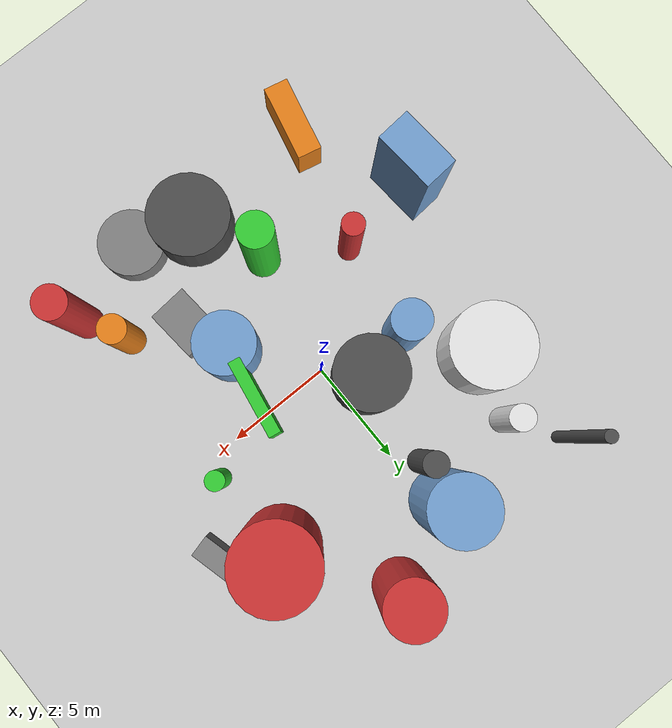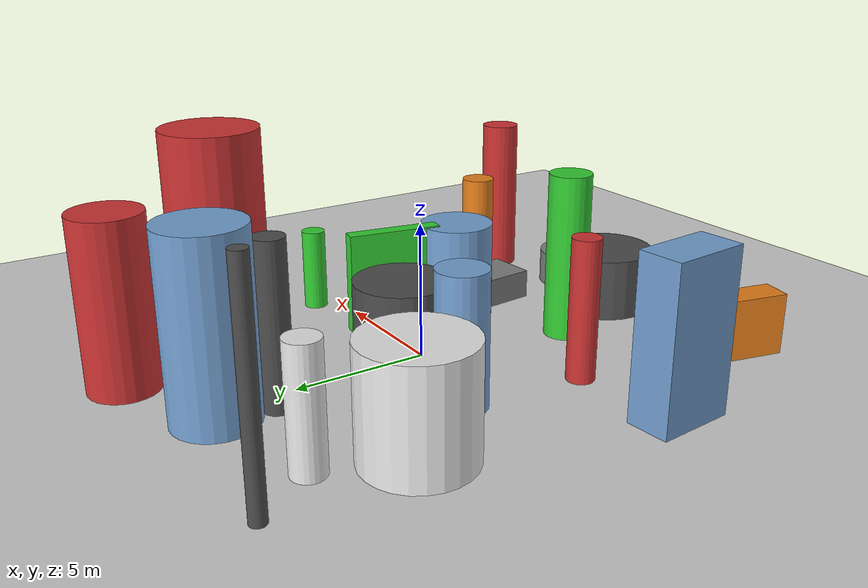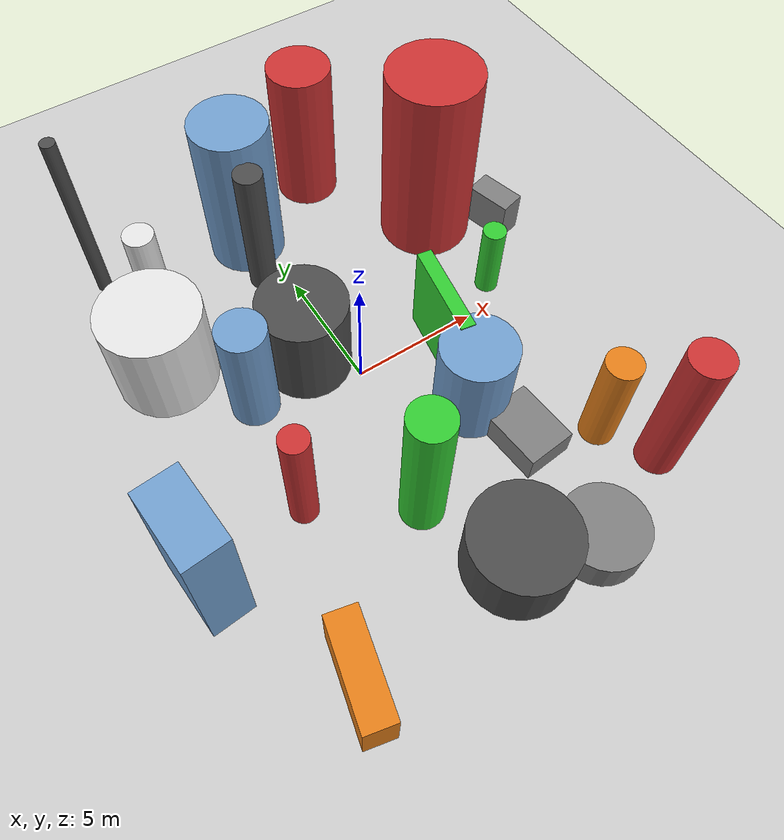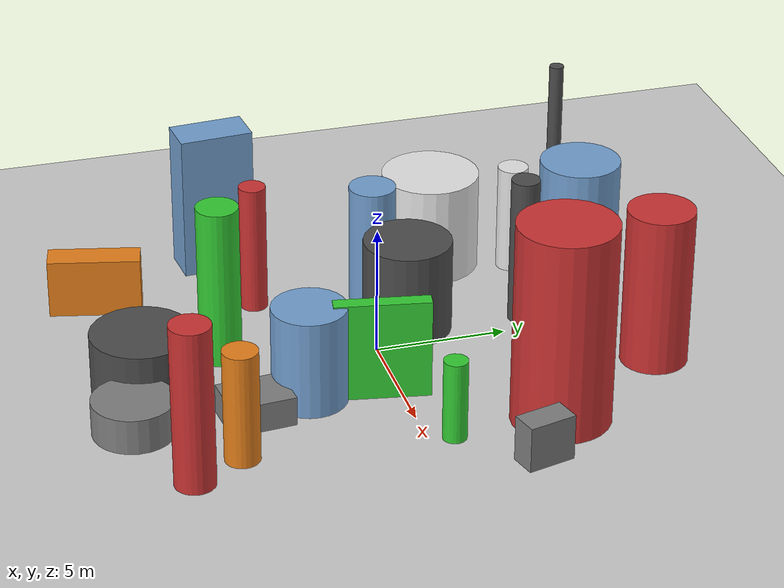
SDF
<?xml version='1.0'?>
<sdf version='1.6'>
  <world name='default'>
    <!-- Sun light -->
    <light name='sun' type='directional'>
      <cast_shadows>1</cast_shadows>
      <pose>0 0 10 0 0 0</pose>
      <diffuse>0.8 0.8 0.8 1</diffuse>
      <specular>0.2 0.2 0.2 1</specular>
      <attenuation>
        <range>1000</range>
        <constant>0.9</constant>
        <linear>0.01</linear>
        <quadratic>0.001</quadratic>
      </attenuation>
      <direction>-0.5 0.1 -0.9</direction>
    </light>

    <!-- Ground plane -->
    <model name='ground_plane'>
      <static>1</static>
      <link name='link'>
        <collision name='collision'>
          <geometry>
            <plane>
              <normal>0 0 1</normal>
              <size>100 100</size>
            </plane>
          </geometry>
          <surface>
            <contact>
              <collide_bitmask>65535</collide_bitmask>
              <ode/>
            </contact>
            <friction>
              <ode>
                <mu>100</mu>
                <mu2>50</mu2>
              </ode>
              <torsional><ode/></torsional>
            </friction>
            <bounce/>
          </surface>
          <max_contacts>10</max_contacts>
        </collision>
        <visual name='visual'>
          <cast_shadows>0</cast_shadows>
          <geometry>
            <plane>
              <normal>0 0 1</normal>
              <size>100 100</size>
            </plane>
          </geometry>
          <material>
            <script>
              <uri>file://media/materials/scripts/gazebo.material</uri>
              <n>Gazebo/Grey</n>
            </script>
          </material>
        </visual>
      </link>
    </model>

    <!-- Environment -->
    <magnetic_field>6e-06 2.3e-05 -4.2e-05</magnetic_field>
    <atmosphere type='adiabatic'/>
    <physics name='default_physics' default='0' type='ode'>
      <gravity>0 0 -9.8</gravity>
      <max_step_size>0.004</max_step_size>
      <real_time_factor>1</real_time_factor>
      <real_time_update_rate>250</real_time_update_rate>
    </physics>
    <scene>
      <ambient>0.4 0.4 0.4 1</ambient>
      <background>0.7 0.7 0.7 1</background>
      <shadows>1</shadows>
    </scene>
    <wind/>
    <spherical_coordinates>
      <surface_model>EARTH_WGS84</surface_model>
      <latitude_deg>0</latitude_deg>
      <longitude_deg>0</longitude_deg>
      <elevation>0</elevation>
      <heading_deg>0</heading_deg>
    </spherical_coordinates>

    <!-- ============ OBSTACLES (22) ============ -->
    <model name='obs_00'>
      <static>1</static>
      <link name='link'>
        <visual name='visual'>
          <geometry>
            <box>
              <size>1.0279 1.8406 1.7640</size>
            </box>
          </geometry>
          <material>
            <script>
              <n>Gazebo/Grey</n>
              <uri>file://media/materials/scripts/gazebo.material</uri>
            </script>
            <ambient>0.5 0.5 0.5 1</ambient>
          </material>
        </visual>
        <collision name='collision'>
          <geometry>
            <box>
              <size>1.0279 1.8406 1.7640</size>
            </box>
          </geometry>
          <max_contacts>10</max_contacts>
          <surface>
            <contact><ode/></contact>
            <bounce/>
            <friction>
              <ode><mu>1</mu><mu2>1</mu2></ode>
              <torsional><ode/></torsional>
            </friction>
          </surface>
        </collision>
      </link>
      <pose>8.8073 3.5464 0.8820 0 0 0.2531</pose>
    </model>

    <model name='obs_01'>
      <static>1</static>
      <link name='link'>
        <visual name='visual'>
          <geometry>
            <cylinder>
              <radius>0.9041</radius>
              <length>4.7983</length>
            </cylinder>
          </geometry>
          <material>
            <script>
              <n>Gazebo/Blue</n>
              <uri>file://media/materials/scripts/gazebo.material</uri>
            </script>
            <ambient>0.447 0.624 0.812 1</ambient>
          </material>
        </visual>
        <collision name='collision'>
          <geometry>
            <cylinder>
              <radius>0.9041</radius>
              <length>4.7983</length>
            </cylinder>
          </geometry>
          <max_contacts>10</max_contacts>
          <surface>
            <contact><ode/></contact>
            <bounce/>
            <friction>
              <ode><mu>1</mu><mu2>1</mu2></ode>
              <torsional><ode/></torsional>
            </friction>
          </surface>
        </collision>
      </link>
      <pose>-3.9810 0.9587 2.3991 0 0 0.2018</pose>
    </model>

    <model name='obs_02'>
      <static>1</static>
      <link name='link'>
        <visual name='visual'>
          <geometry>
            <cylinder>
              <radius>1.6908</radius>
              <length>3.7263</length>
            </cylinder>
          </geometry>
          <material>
            <script>
              <n>Gazebo/DarkGrey</n>
              <uri>file://media/materials/scripts/gazebo.material</uri>
            </script>
            <ambient>0.3 0.3 0.3 1</ambient>
          </material>
        </visual>
        <collision name='collision'>
          <geometry>
            <cylinder>
              <radius>1.6908</radius>
              <length>3.7263</length>
            </cylinder>
          </geometry>
          <max_contacts>10</max_contacts>
          <surface>
            <contact><ode/></contact>
            <bounce/>
            <friction>
              <ode><mu>1</mu><mu2>1</mu2></ode>
              <torsional><ode/></torsional>
            </friction>
          </surface>
        </collision>
      </link>
      <pose>-1.4022 1.5997 1.8632 0 0 0.1956</pose>
    </model>

    <model name='obs_03'>
      <static>1</static>
      <link name='link'>
        <visual name='visual'>
          <geometry>
            <box>
              <size>0.5684 3.5823 3.8785</size>
            </box>
          </geometry>
          <material>
            <script>
              <n>Gazebo/Green</n>
              <uri>file://media/materials/scripts/gazebo.material</uri>
            </script>
            <ambient>0.2 0.8 0.2 1</ambient>
          </material>
        </visual>
        <collision name='collision'>
          <geometry>
            <box>
              <size>0.5684 3.5823 3.8785</size>
            </box>
          </geometry>
          <max_contacts>10</max_contacts>
          <surface>
            <contact><ode/></contact>
            <bounce/>
            <friction>
              <ode><mu>1</mu><mu2>1</mu2></ode>
              <torsional><ode/></torsional>
            </friction>
          </surface>
        </collision>
      </link>
      <pose>3.0941 -0.7002 1.9392 0 0 2.9721</pose>
    </model>

    <model name='obs_04'>
      <static>1</static>
      <link name='link'>
        <visual name='visual'>
          <geometry>
            <cylinder>
              <radius>0.8008</radius>
              <length>6.2743</length>
            </cylinder>
          </geometry>
          <material>
            <script>
              <n>Gazebo/Green</n>
              <uri>file://media/materials/scripts/gazebo.material</uri>
            </script>
            <ambient>0.2 0.8 0.2 1</ambient>
          </material>
        </visual>
        <collision name='collision'>
          <geometry>
            <cylinder>
              <radius>0.8008</radius>
              <length>6.2743</length>
            </cylinder>
          </geometry>
          <max_contacts>10</max_contacts>
          <surface>
            <contact><ode/></contact>
            <bounce/>
            <friction>
              <ode><mu>1</mu><mu2>1</mu2></ode>
              <torsional><ode/></torsional>
            </friction>
          </surface>
        </collision>
      </link>
      <pose>-1.1568 -5.7260 3.1372 0 0 0.0185</pose>
    </model>

    <model name='obs_05'>
      <static>1</static>
      <link name='link'>
        <visual name='visual'>
          <geometry>
            <cylinder>
              <radius>1.5091</radius>
              <length>6.5991</length>
            </cylinder>
          </geometry>
          <material>
            <script>
              <n>Gazebo/Blue</n>
              <uri>file://media/materials/scripts/gazebo.material</uri>
            </script>
            <ambient>0.447 0.624 0.812 1</ambient>
          </material>
        </visual>
        <collision name='collision'>
          <geometry>
            <cylinder>
              <radius>1.5091</radius>
              <length>6.5991</length>
            </cylinder>
          </geometry>
          <max_contacts>10</max_contacts>
          <surface>
            <contact><ode/></contact>
            <bounce/>
            <friction>
              <ode><mu>1</mu><mu2>1</mu2></ode>
              <torsional><ode/></torsional>
            </friction>
          </surface>
        </collision>
      </link>
      <pose>-0.5363 8.0236 3.2995 0 0 1.6909</pose>
    </model>

    <model name='obs_06'>
      <static>1</static>
      <link name='link'>
        <visual name='visual'>
          <geometry>
            <cylinder>
              <radius>0.6549</radius>
              <length>4.3995</length>
            </cylinder>
          </geometry>
          <material>
            <script>
              <n>Gazebo/Orange</n>
              <uri>file://media/materials/scripts/gazebo.material</uri>
            </script>
            <ambient>0.9 0.5 0.1 1</ambient>
          </material>
        </visual>
        <collision name='collision'>
          <geometry>
            <cylinder>
              <radius>0.6549</radius>
              <length>4.3995</length>
            </cylinder>
          </geometry>
          <max_contacts>10</max_contacts>
          <surface>
            <contact><ode/></contact>
            <bounce/>
            <friction>
              <ode><mu>1</mu><mu2>1</mu2></ode>
              <torsional><ode/></torsional>
            </friction>
          </surface>
        </collision>
      </link>
      <pose>5.9205 -6.6062 2.1997 0 0 1.5338</pose>
    </model>

    <model name='obs_07'>
      <static>1</static>
      <link name='link'>
        <visual name='visual'>
          <geometry>
            <cylinder>
              <radius>1.4064</radius>
              <length>3.8302</length>
            </cylinder>
          </geometry>
          <material>
            <script>
              <n>Gazebo/Blue</n>
              <uri>file://media/materials/scripts/gazebo.material</uri>
            </script>
            <ambient>0.447 0.624 0.812 1</ambient>
          </material>
        </visual>
        <collision name='collision'>
          <geometry>
            <cylinder>
              <radius>1.4064</radius>
              <length>3.8302</length>
            </cylinder>
          </geometry>
          <max_contacts>10</max_contacts>
          <surface>
            <contact><ode/></contact>
            <bounce/>
            <friction>
              <ode><mu>1</mu><mu2>1</mu2></ode>
              <torsional><ode/></torsional>
            </friction>
          </surface>
        </collision>
      </link>
      <pose>2.6588 -3.2962 1.9151 0 0 1.0560</pose>
    </model>

    <model name='obs_08'>
      <static>1</static>
      <link name='link'>
        <visual name='visual'>
          <geometry>
            <cylinder>
              <radius>1.8512</radius>
              <length>7.8651</length>
            </cylinder>
          </geometry>
          <material>
            <script>
              <n>Gazebo/Red</n>
              <uri>file://media/materials/scripts/gazebo.material</uri>
            </script>
            <ambient>0.8 0.2 0.2 1</ambient>
          </material>
        </visual>
        <collision name='collision'>
          <geometry>
            <cylinder>
              <radius>1.8512</radius>
              <length>7.8651</length>
            </cylinder>
          </geometry>
          <max_contacts>10</max_contacts>
          <surface>
            <contact><ode/></contact>
            <bounce/>
            <friction>
              <ode><mu>1</mu><mu2>1</mu2></ode>
              <torsional><ode/></torsional>
            </friction>
          </surface>
        </collision>
      </link>
      <pose>6.3685 5.0228 3.9325 0 0 2.6405</pose>
    </model>

    <model name='obs_09'>
      <static>1</static>
      <link name='link'>
        <visual name='visual'>
          <geometry>
            <box>
              <size>1.8791 2.4754 1.1355</size>
            </box>
          </geometry>
          <material>
            <script>
              <n>Gazebo/Grey</n>
              <uri>file://media/materials/scripts/gazebo.material</uri>
            </script>
            <ambient>0.5 0.5 0.5 1</ambient>
          </material>
        </visual>
        <collision name='collision'>
          <geometry>
            <box>
              <size>1.8791 2.4754 1.1355</size>
            </box>
          </geometry>
          <max_contacts>10</max_contacts>
          <surface>
            <contact><ode/></contact>
            <bounce/>
            <friction>
              <ode><mu>1</mu><mu2>1</mu2></ode>
              <torsional><ode/></torsional>
            </friction>
          </surface>
        </collision>
      </link>
      <pose>3.4559 -5.5072 0.5678 0 0 0.0847</pose>
    </model>

    <model name='obs_10'>
      <static>1</static>
      <link name='link'>
        <visual name='visual'>
          <geometry>
            <box>
              <size>3.5340 1.1361 2.3008</size>
            </box>
          </geometry>
          <material>
            <script>
              <n>Gazebo/Orange</n>
              <uri>file://media/materials/scripts/gazebo.material</uri>
            </script>
            <ambient>0.9 0.5 0.1 1</ambient>
          </material>
        </visual>
        <collision name='collision'>
          <geometry>
            <box>
              <size>3.5340 1.1361 2.3008</size>
            </box>
          </geometry>
          <max_contacts>10</max_contacts>
          <surface>
            <contact><ode/></contact>
            <bounce/>
            <friction>
              <ode><mu>1</mu><mu2>1</mu2></ode>
              <torsional><ode/></torsional>
            </friction>
          </surface>
        </collision>
      </link>
      <pose>-6.0174 -9.5115 1.1504 0 0 1.3465</pose>
    </model>

    <model name='obs_11'>
      <static>1</static>
      <link name='link'>
        <visual name='visual'>
          <geometry>
            <cylinder>
              <radius>0.7547</radius>
              <length>6.3286</length>
            </cylinder>
          </geometry>
          <material>
            <script>
              <n>Gazebo/Red</n>
              <uri>file://media/materials/scripts/gazebo.material</uri>
            </script>
            <ambient>0.8 0.2 0.2 1</ambient>
          </material>
        </visual>
        <collision name='collision'>
          <geometry>
            <cylinder>
              <radius>0.7547</radius>
              <length>6.3286</length>
            </cylinder>
          </geometry>
          <max_contacts>10</max_contacts>
          <surface>
            <contact><ode/></contact>
            <bounce/>
            <friction>
              <ode><mu>1</mu><mu2>1</mu2></ode>
              <torsional><ode/></torsional>
            </friction>
          </surface>
        </collision>
      </link>
      <pose>6.9948 -8.5434 3.1643 0 0 0.6650</pose>
    </model>

    <model name='obs_12'>
      <static>1</static>
      <link name='link'>
        <visual name='visual'>
          <geometry>
            <cylinder>
              <radius>1.9097</radius>
              <length>3.9510</length>
            </cylinder>
          </geometry>
          <material>
            <script>
              <n>Gazebo/White</n>
              <uri>file://media/materials/scripts/gazebo.material</uri>
            </script>
            <ambient>0.9 0.9 0.9 1</ambient>
          </material>
        </visual>
        <collision name='collision'>
          <geometry>
            <cylinder>
              <radius>1.9097</radius>
              <length>3.9510</length>
            </cylinder>
          </geometry>
          <max_contacts>10</max_contacts>
          <surface>
            <contact><ode/></contact>
            <bounce/>
            <friction>
              <ode><mu>1</mu><mu2>1</mu2></ode>
              <torsional><ode/></torsional>
            </friction>
          </surface>
        </collision>
      </link>
      <pose>-6.1113 3.9271 1.9755 0 0 0.8742</pose>
    </model>

    <model name='obs_13'>
      <static>1</static>
      <link name='link'>
        <visual name='visual'>
          <geometry>
            <cylinder>
              <radius>1.5357</radius>
              <length>1.3646</length>
            </cylinder>
          </geometry>
          <material>
            <script>
              <n>Gazebo/Grey</n>
              <uri>file://media/materials/scripts/gazebo.material</uri>
            </script>
            <ambient>0.5 0.5 0.5 1</ambient>
          </material>
        </visual>
        <collision name='collision'>
          <geometry>
            <cylinder>
              <radius>1.5357</radius>
              <length>1.3646</length>
            </cylinder>
          </geometry>
          <max_contacts>10</max_contacts>
          <surface>
            <contact><ode/></contact>
            <bounce/>
            <friction>
              <ode><mu>1</mu><mu2>1</mu2></ode>
              <torsional><ode/></torsional>
            </friction>
          </surface>
        </collision>
      </link>
      <pose>3.1212 -9.8891 0.6823 0 0 1.4775</pose>
    </model>

    <model name='obs_14'>
      <static>1</static>
      <link name='link'>
        <visual name='visual'>
          <geometry>
            <cylinder>
              <radius>0.2769</radius>
              <length>7.7010</length>
            </cylinder>
          </geometry>
          <material>
            <script>
              <n>Gazebo/DarkGrey</n>
              <uri>file://media/materials/scripts/gazebo.material</uri>
            </script>
            <ambient>0.3 0.3 0.3 1</ambient>
          </material>
        </visual>
        <collision name='collision'>
          <geometry>
            <cylinder>
              <radius>0.2769</radius>
              <length>7.7010</length>
            </cylinder>
          </geometry>
          <max_contacts>10</max_contacts>
          <surface>
            <contact><ode/></contact>
            <bounce/>
            <friction>
              <ode><mu>1</mu><mu2>1</mu2></ode>
              <torsional><ode/></torsional>
            </friction>
          </surface>
        </collision>
      </link>
      <pose>-6.4823 9.1593 3.8505 0 0 0.7044</pose>
    </model>

    <model name='obs_15'>
      <static>1</static>
      <link name='link'>
        <visual name='visual'>
          <geometry>
            <cylinder>
              <radius>1.9068</radius>
              <length>2.3955</length>
            </cylinder>
          </geometry>
          <material>
            <script>
              <n>Gazebo/DarkGrey</n>
              <uri>file://media/materials/scripts/gazebo.material</uri>
            </script>
            <ambient>0.3 0.3 0.3 1</ambient>
          </material>
        </visual>
        <collision name='collision'>
          <geometry>
            <cylinder>
              <radius>1.9068</radius>
              <length>2.3955</length>
            </cylinder>
          </geometry>
          <max_contacts>10</max_contacts>
          <surface>
            <contact><ode/></contact>
            <bounce/>
            <friction>
              <ode><mu>1</mu><mu2>1</mu2></ode>
              <torsional><ode/></torsional>
            </friction>
          </surface>
        </collision>
      </link>
      <pose>0.3592 -8.9956 1.1978 0 0 2.3695</pose>
    </model>

    <model name='obs_16'>
      <static>1</static>
      <link name='link'>
        <visual name='visual'>
          <geometry>
            <cylinder>
              <radius>0.5913</radius>
              <length>4.3149</length>
            </cylinder>
          </geometry>
          <material>
            <script>
              <n>Gazebo/White</n>
              <uri>file://media/materials/scripts/gazebo.material</uri>
            </script>
            <ambient>0.9 0.9 0.9 1</ambient>
          </material>
        </visual>
        <collision name='collision'>
          <geometry>
            <cylinder>
              <radius>0.5913</radius>
              <length>4.3149</length>
            </cylinder>
          </geometry>
          <max_contacts>10</max_contacts>
          <surface>
            <contact><ode/></contact>
            <bounce/>
            <friction>
              <ode><mu>1</mu><mu2>1</mu2></ode>
              <torsional><ode/></torsional>
            </friction>
          </surface>
        </collision>
      </link>
      <pose>-5.0160 6.9667 2.1575 0 0 1.9520</pose>
    </model>

    <model name='obs_17'>
      <static>1</static>
      <link name='link'>
        <visual name='visual'>
          <geometry>
            <cylinder>
              <radius>0.5532</radius>
              <length>5.8963</length>
            </cylinder>
          </geometry>
          <material>
            <script>
              <n>Gazebo/DarkGrey</n>
              <uri>file://media/materials/scripts/gazebo.material</uri>
            </script>
            <ambient>0.3 0.3 0.3 1</ambient>
          </material>
        </visual>
        <collision name='collision'>
          <geometry>
            <cylinder>
              <radius>0.5532</radius>
              <length>5.8963</length>
            </cylinder>
          </geometry>
          <max_contacts>10</max_contacts>
          <surface>
            <contact><ode/></contact>
            <bounce/>
            <friction>
              <ode><mu>1</mu><mu2>1</mu2></ode>
              <torsional><ode/></torsional>
            </friction>
          </surface>
        </collision>
      </link>
      <pose>-0.8708 6.0283 2.9481 0 0 1.7718</pose>
    </model>

    <model name='obs_18'>
      <static>1</static>
      <link name='link'>
        <visual name='visual'>
          <geometry>
            <cylinder>
              <radius>1.2734</radius>
              <length>6.2355</length>
            </cylinder>
          </geometry>
          <material>
            <script>
              <n>Gazebo/Red</n>
              <uri>file://media/materials/scripts/gazebo.material</uri>
            </script>
            <ambient>0.8 0.2 0.2 1</ambient>
          </material>
        </visual>
        <collision name='collision'>
          <geometry>
            <cylinder>
              <radius>1.2734</radius>
              <length>6.2355</length>
            </cylinder>
          </geometry>
          <max_contacts>10</max_contacts>
          <surface>
            <contact><ode/></contact>
            <bounce/>
            <friction>
              <ode><mu>1</mu><mu2>1</mu2></ode>
              <torsional><ode/></torsional>
            </friction>
          </surface>
        </collision>
      </link>
      <pose>3.3516 9.7578 3.1177 0 0 0.5271</pose>
    </model>

    <model name='obs_19'>
      <static>1</static>
      <link name='link'>
        <visual name='visual'>
          <geometry>
            <cylinder>
              <radius>0.4530</radius>
              <length>3.1773</length>
            </cylinder>
          </geometry>
          <material>
            <script>
              <n>Gazebo/Green</n>
              <uri>file://media/materials/scripts/gazebo.material</uri>
            </script>
            <ambient>0.2 0.8 0.2 1</ambient>
          </material>
        </visual>
        <collision name='collision'>
          <geometry>
            <cylinder>
              <radius>0.4530</radius>
              <length>3.1773</length>
            </cylinder>
          </geometry>
          <max_contacts>10</max_contacts>
          <surface>
            <contact><ode/></contact>
            <bounce/>
            <friction>
              <ode><mu>1</mu><mu2>1</mu2></ode>
              <torsional><ode/></torsional>
            </friction>
          </surface>
        </collision>
      </link>
      <pose>6.6114 0.9574 1.5886 0 0 2.4435</pose>
    </model>

    <model name='obs_20'>
      <static>1</static>
      <link name='link'>
        <visual name='visual'>
          <geometry>
            <box>
              <size>1.5919 2.8707 5.7909</size>
            </box>
          </geometry>
          <material>
            <script>
              <n>Gazebo/Blue</n>
              <uri>file://media/materials/scripts/gazebo.material</uri>
            </script>
            <ambient>0.447 0.624 0.812 1</ambient>
          </material>
        </visual>
        <collision name='collision'>
          <geometry>
            <box>
              <size>1.5919 2.8707 5.7909</size>
            </box>
          </geometry>
          <max_contacts>10</max_contacts>
          <surface>
            <contact><ode/></contact>
            <bounce/>
            <friction>
              <ode><mu>1</mu><mu2>1</mu2></ode>
              <torsional><ode/></torsional>
            </friction>
          </surface>
        </collision>
      </link>
      <pose>-8.4503 -4.2854 2.8954 0 0 0.0807</pose>
    </model>

    <model name='obs_21'>
      <static>1</static>
      <link name='link'>
        <visual name='visual'>
          <geometry>
            <cylinder>
              <radius>0.5169</radius>
              <length>5.1447</length>
            </cylinder>
          </geometry>
          <material>
            <script>
              <n>Gazebo/Red</n>
              <uri>file://media/materials/scripts/gazebo.material</uri>
            </script>
            <ambient>0.8 0.2 0.2 1</ambient>
          </material>
        </visual>
        <collision name='collision'>
          <geometry>
            <cylinder>
              <radius>0.5169</radius>
              <length>5.1447</length>
            </cylinder>
          </geometry>
          <max_contacts>10</max_contacts>
          <surface>
            <contact><ode/></contact>
            <bounce/>
            <friction>
              <ode><mu>1</mu><mu2>1</mu2></ode>
              <torsional><ode/></torsional>
            </friction>
          </surface>
        </collision>
      </link>
      <pose>-4.5657 -3.6058 2.5723 0 0 2.9577</pose>
    </model>

    <!-- GUI camera -->
    <gui fullscreen='0'>
      <camera name='user_camera'>
        <pose>-15 0 18 0 0.85 0.15</pose>
        <view_controller>orbit</view_controller>
        <projection_type>perspective</projection_type>
      </camera>
    </gui>
  </world>
</sdf>
